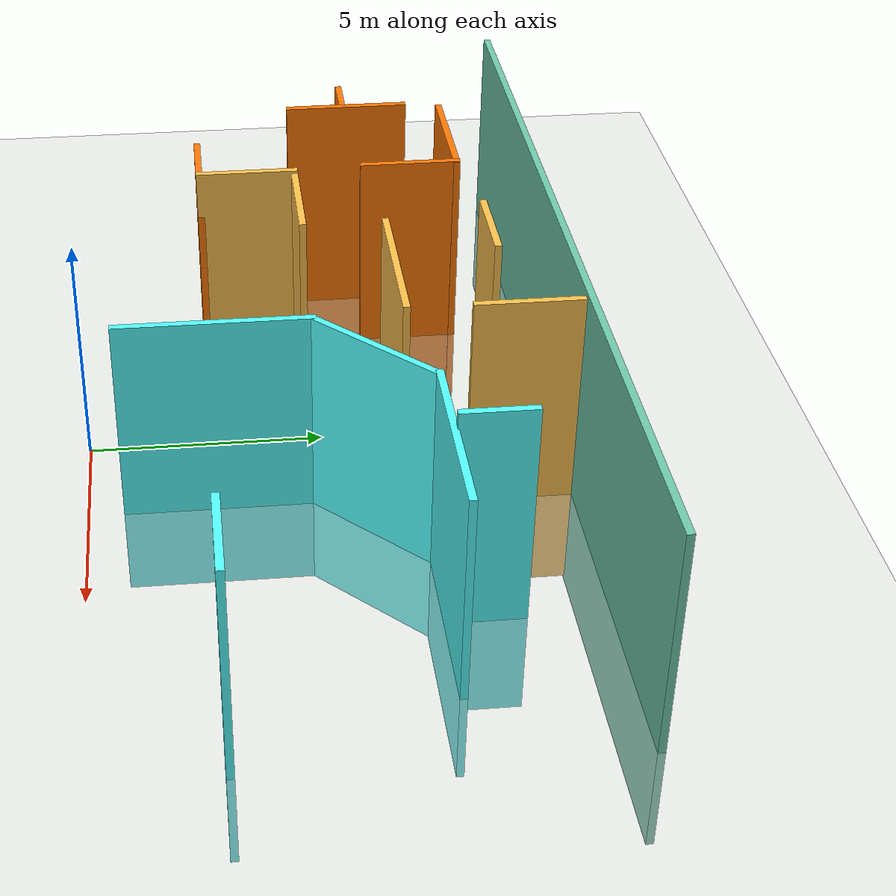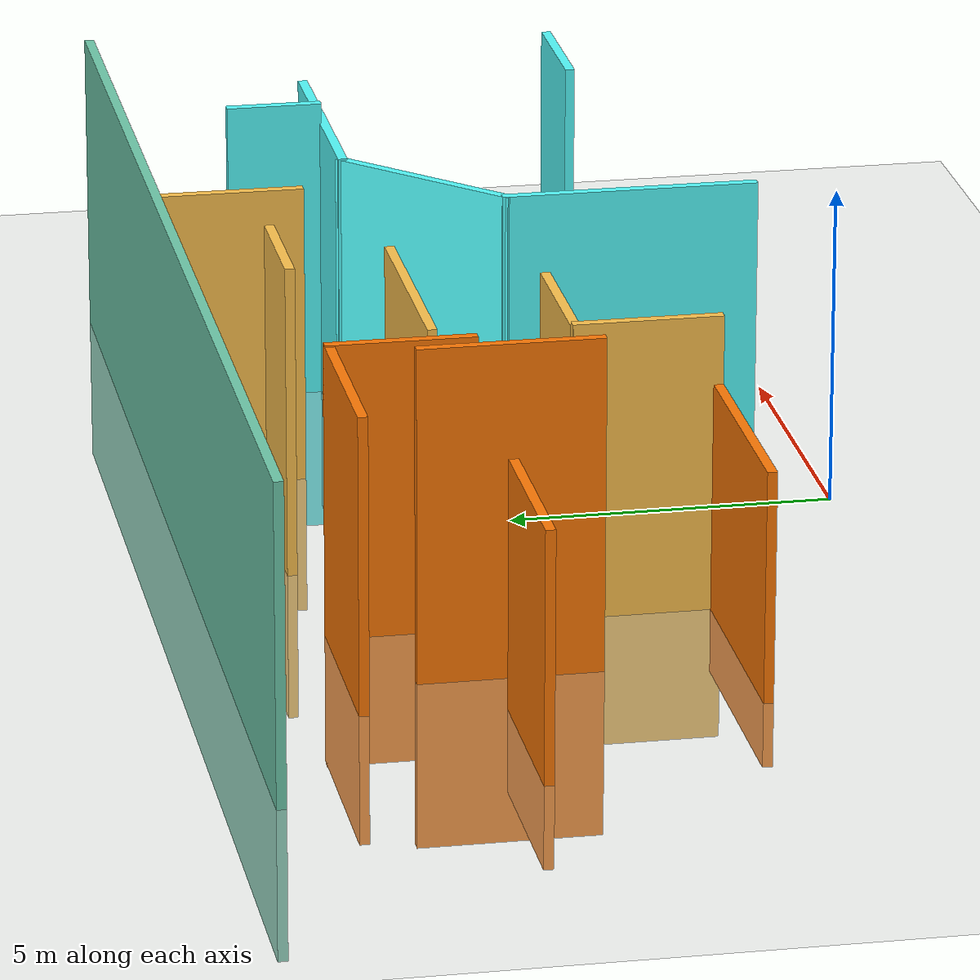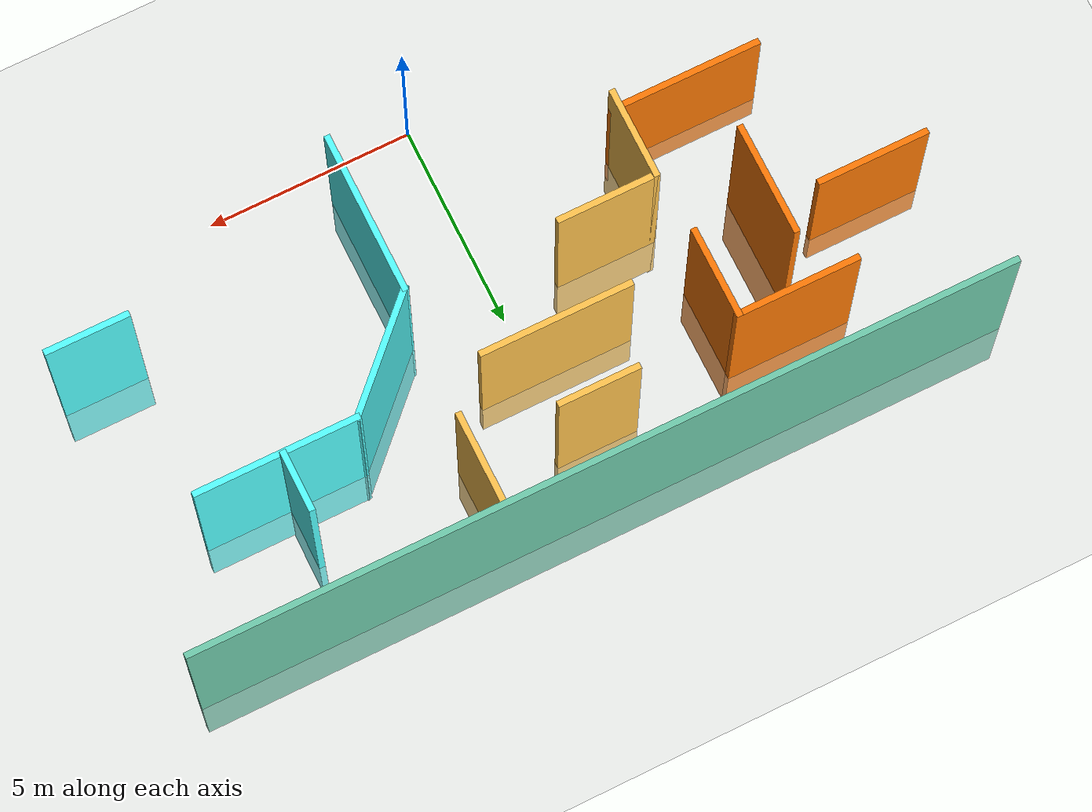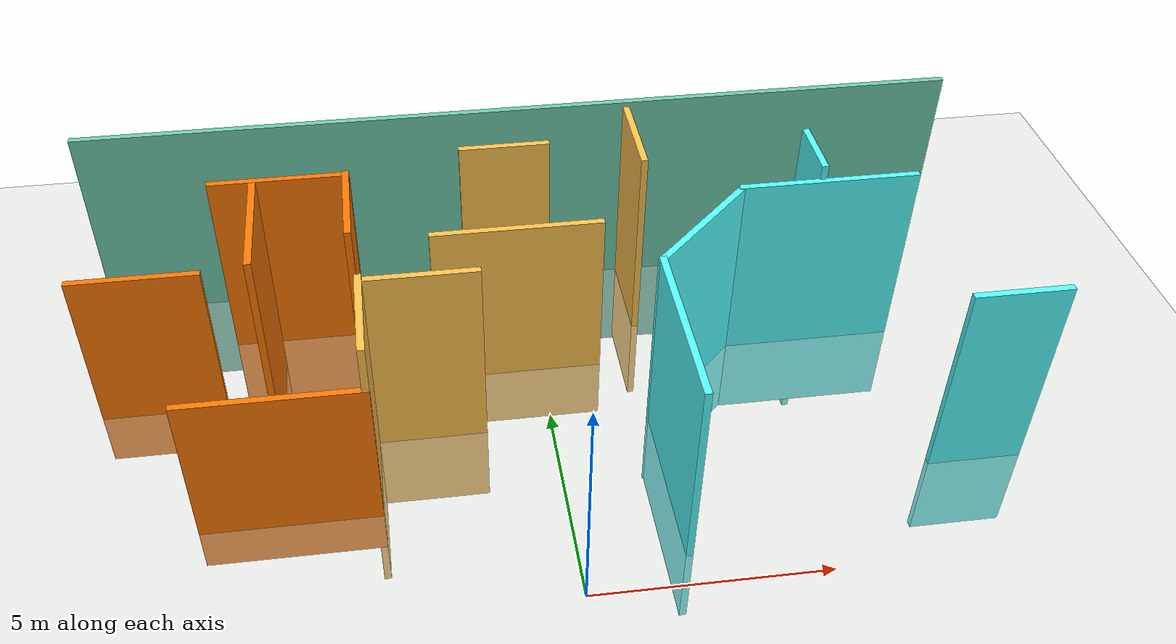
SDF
<sdf version="1.6">
 <world name="default">
  <model name="ground_plane">
   <static>1</static>
   <link name="link">
    <collision name="collision">
     <geometry><plane><normal>0 0 1</normal><size>100 100</size></plane></geometry>
     <surface><friction><ode><mu>100</mu><mu2>50</mu2></ode></friction></surface>
    </collision>
    <visual name="visual">
     <cast_shadows>0</cast_shadows>
     <geometry><plane><normal>0 0 1</normal><size>100 100</size></plane></geometry>
     <material>
      <script><uri>file://media/materials/scripts/gazebo.material</uri><name>Gazebo/Grey</name></script>
     </material>
    </visual>
   </link>
  </model>
  <model name="Maze_House">
   <link name="Wall_11">
    <pose>-5.47185 8.41758 0 0 -0 0</pose>
    <inertial>
     <inertia><ixx>0</ixx><ixy>0</ixy><ixz>0</ixz><iyy>0</iyy><iyz>0</iyz><izz>0</izz></inertia>
     <mass>0</mass>
    </inertial>
    <visual name="Wall_11_Visual">
     <pose>0 0 1.25 0 -0 0</pose>
     <geometry><box><size>3.05 0.15 6.5468</size></box></geometry>
     <material>
      <script><uri>file://media/materials/scripts/gazebo.material</uri><name>Gazebo/Grey</name></script>
      <ambient>0.996078 0.47451 0.0196078 1</ambient>
      <shader type="pixel"/>
     </material>
    </visual>
    <collision name="Wall_11_Collision">
     <pose>0 0 1.25 0 -0 0</pose>
     <geometry><box><size>3.05 0.15 6.5468</size></box></geometry>
     <surface>
      <friction>
       <ode><mu>1</mu><mu2>1</mu2><fdir1>0 0 0</fdir1><slip1>0</slip1><slip2>0</slip2></ode>
       <torsional>
        <coefficient>1</coefficient>
        <patch_radius>0</patch_radius>
        <surface_radius>0</surface_radius>
        <use_patch_radius>1</use_patch_radius>
        <ode><slip>0</slip></ode>
       </torsional>
      </friction>
      <bounce><restitution_coefficient>0</restitution_coefficient><threshold>1e+06</threshold></bounce>
      <contact>
       <collide_without_contact>0</collide_without_contact>
       <collide_without_contact_bitmask>1</collide_without_contact_bitmask>
       <collide_bitmask>1</collide_bitmask>
       <ode>
        <soft_cfm>0</soft_cfm>
        <soft_erp>0.2</soft_erp>
        <kp>1e+13</kp>
        <kd>1</kd>
        <max_vel>0.01</max_vel>
        <min_depth>0</min_depth>
       </ode>
       <bullet>
        <split_impulse>1</split_impulse>
        <split_impulse_penetration_threshold>-0.01</split_impulse_penetration_threshold>
        <soft_cfm>0</soft_cfm>
        <soft_erp>0.2</soft_erp>
        <kp>1e+13</kp>
        <kd>1</kd>
       </bullet>
      </contact>
     </surface>
    </collision>
   </link>
   <link name="Wall_12">
    <pose>-4.03185 7.36758 0 0 0 -1.5708</pose>
    <inertial>
     <inertia><ixx>0</ixx><ixy>0</ixy><ixz>0</ixz><iyy>0</iyy><iyz>0</iyz><izz>0</izz></inertia>
     <mass>0</mass>
    </inertial>
    <visual name="Wall_12_Visual">
     <pose>0 0 1.25 0 -0 0</pose>
     <geometry><box><size>2.25 0.15 6.58839</size></box></geometry>
     <material>
      <script><uri>file://media/materials/scripts/gazebo.material</uri><name>Gazebo/Grey</name></script>
      <ambient>0.996078 0.47451 0.0196078 1</ambient>
      <shader type="pixel"/>
     </material>
    </visual>
    <collision name="Wall_12_Collision">
     <pose>0 0 1.25 0 -0 0</pose>
     <geometry><box><size>2.25 0.15 6.58839</size></box></geometry>
     <surface>
      <friction>
       <ode><mu>1</mu><mu2>1</mu2><fdir1>0 0 0</fdir1><slip1>0</slip1><slip2>0</slip2></ode>
       <torsional>
        <coefficient>1</coefficient>
        <patch_radius>0</patch_radius>
        <surface_radius>0</surface_radius>
        <use_patch_radius>1</use_patch_radius>
        <ode><slip>0</slip></ode>
       </torsional>
      </friction>
      <bounce><restitution_coefficient>0</restitution_coefficient><threshold>1e+06</threshold></bounce>
      <contact>
       <collide_without_contact>0</collide_without_contact>
       <collide_without_contact_bitmask>1</collide_without_contact_bitmask>
       <collide_bitmask>1</collide_bitmask>
       <ode>
        <soft_cfm>0</soft_cfm>
        <soft_erp>0.2</soft_erp>
        <kp>1e+13</kp>
        <kd>1</kd>
        <max_vel>0.01</max_vel>
        <min_depth>0</min_depth>
       </ode>
       <bullet>
        <split_impulse>1</split_impulse>
        <split_impulse_penetration_threshold>-0.01</split_impulse_penetration_threshold>
        <soft_cfm>0</soft_cfm>
        <soft_erp>0.2</soft_erp>
        <kp>1e+13</kp>
        <kd>1</kd>
       </bullet>
      </contact>
     </surface>
    </collision>
   </link>
   <link name="Wall_14">
    <pose>-5.91104 6.10678 0 0 0 -1.5708</pose>
    <inertial>
     <inertia><ixx>0</ixx><ixy>0</ixy><ixz>0</ixz><iyy>0</iyy><iyz>0</iyz><izz>0</izz></inertia>
     <mass>0</mass>
    </inertial>
    <visual name="Wall_14_Visual">
     <pose>0 0 1.25 0 -0 0</pose>
     <geometry><box><size>2.75 0.15 7.70569</size></box></geometry>
     <material>
      <script><uri>file://media/materials/scripts/gazebo.material</uri><name>Gazebo/Grey</name></script>
      <ambient>0.996078 0.47451 0.0196078 1</ambient>
      <shader type="pixel"/>
     </material>
    </visual>
    <collision name="Wall_14_Collision">
     <pose>0 0 1.25 0 -0 0</pose>
     <geometry><box><size>2.75 0.15 7.70569</size></box></geometry>
     <surface>
      <friction>
       <ode><mu>1</mu><mu2>1</mu2><fdir1>0 0 0</fdir1><slip1>0</slip1><slip2>0</slip2></ode>
       <torsional>
        <coefficient>1</coefficient>
        <patch_radius>0</patch_radius>
        <surface_radius>0</surface_radius>
        <use_patch_radius>1</use_patch_radius>
        <ode><slip>0</slip></ode>
       </torsional>
      </friction>
      <bounce><restitution_coefficient>0</restitution_coefficient><threshold>1e+06</threshold></bounce>
      <contact>
       <collide_without_contact>0</collide_without_contact>
       <collide_without_contact_bitmask>1</collide_without_contact_bitmask>
       <collide_bitmask>1</collide_bitmask>
       <ode>
        <soft_cfm>0</soft_cfm>
        <soft_erp>0.2</soft_erp>
        <kp>1e+13</kp>
        <kd>1</kd>
        <max_vel>0.01</max_vel>
        <min_depth>0</min_depth>
       </ode>
       <bullet>
        <split_impulse>1</split_impulse>
        <split_impulse_penetration_threshold>-0.01</split_impulse_penetration_threshold>
        <soft_cfm>0</soft_cfm>
        <soft_erp>0.2</soft_erp>
        <kp>1e+13</kp>
        <kd>1</kd>
       </bullet>
      </contact>
     </surface>
    </collision>
   </link>
   <link name="Wall_16">
    <pose>-8.48785 6.28957 0 0 -0 3.14159</pose>
    <inertial>
     <inertia><ixx>0</ixx><ixy>0</ixy><ixz>0</ixz><iyy>0</iyy><iyz>0</iyz><izz>0</izz></inertia>
     <mass>0</mass>
    </inertial>
    <visual name="Wall_16_Visual">
     <pose>0 0 1.25 0 -0 0</pose>
     <geometry><box><size>2.75 0.15 5.10122</size></box></geometry>
     <material>
      <script><uri>file://media/materials/scripts/gazebo.material</uri><name>Gazebo/Grey</name></script>
      <ambient>0.996078 0.47451 0.0196078 1</ambient>
      <shader type="pixel"/>
     </material>
    </visual>
    <collision name="Wall_16_Collision">
     <pose>0 0 1.25 0 -0 0</pose>
     <geometry><box><size>2.75 0.15 5.10122</size></box></geometry>
     <surface>
      <friction>
       <ode><mu>1</mu><mu2>1</mu2><fdir1>0 0 0</fdir1><slip1>0</slip1><slip2>0</slip2></ode>
       <torsional>
        <coefficient>1</coefficient>
        <patch_radius>0</patch_radius>
        <surface_radius>0</surface_radius>
        <use_patch_radius>1</use_patch_radius>
        <ode><slip>0</slip></ode>
       </torsional>
      </friction>
      <bounce><restitution_coefficient>0</restitution_coefficient><threshold>1e+06</threshold></bounce>
      <contact>
       <collide_without_contact>0</collide_without_contact>
       <collide_without_contact_bitmask>1</collide_without_contact_bitmask>
       <collide_bitmask>1</collide_bitmask>
       <ode>
        <soft_cfm>0</soft_cfm>
        <soft_erp>0.2</soft_erp>
        <kp>1e+13</kp>
        <kd>1</kd>
        <max_vel>0.01</max_vel>
        <min_depth>0</min_depth>
       </ode>
       <bullet>
        <split_impulse>1</split_impulse>
        <split_impulse_penetration_threshold>-0.01</split_impulse_penetration_threshold>
        <soft_cfm>0</soft_cfm>
        <soft_erp>0.2</soft_erp>
        <kp>1e+13</kp>
        <kd>1</kd>
       </bullet>
      </contact>
     </surface>
    </collision>
   </link>
   <link name="Wall_20">
    <pose>-2.69303 4.75396 0 0 -0 0</pose>
    <inertial>
     <inertia><ixx>0</ixx><ixy>0</ixy><ixz>0</ixz><iyy>0</iyy><iyz>0</iyz><izz>0</izz></inertia>
     <mass>0</mass>
    </inertial>
    <visual name="Wall_20_Visual">
     <pose>0 0 1.25 0 -0 0</pose>
     <geometry><box><size>2.5 0.15 6.50809</size></box></geometry>
     <material>
      <script><uri>file://media/materials/scripts/gazebo.material</uri><name>Gazebo/Grey</name></script>
      <ambient>1 0.764706 0.305882 1</ambient>
      <shader type="pixel"/>
     </material>
    </visual>
    <collision name="Wall_20_Collision">
     <pose>0 0 1.25 0 -0 0</pose>
     <geometry><box><size>2.5 0.15 6.50809</size></box></geometry>
     <surface>
      <friction>
       <ode><mu>1</mu><mu2>1</mu2><fdir1>0 0 0</fdir1><slip1>0</slip1><slip2>0</slip2></ode>
       <torsional>
        <coefficient>1</coefficient>
        <patch_radius>0</patch_radius>
        <surface_radius>0</surface_radius>
        <use_patch_radius>1</use_patch_radius>
        <ode><slip>0</slip></ode>
       </torsional>
      </friction>
      <bounce><restitution_coefficient>0</restitution_coefficient><threshold>1e+06</threshold></bounce>
      <contact>
       <collide_without_contact>0</collide_without_contact>
       <collide_without_contact_bitmask>1</collide_without_contact_bitmask>
       <collide_bitmask>1</collide_bitmask>
       <ode>
        <soft_cfm>0</soft_cfm>
        <soft_erp>0.2</soft_erp>
        <kp>1e+13</kp>
        <kd>1</kd>
        <max_vel>0.01</max_vel>
        <min_depth>0</min_depth>
       </ode>
       <bullet>
        <split_impulse>1</split_impulse>
        <split_impulse_penetration_threshold>-0.01</split_impulse_penetration_threshold>
        <soft_cfm>0</soft_cfm>
        <soft_erp>0.2</soft_erp>
        <kp>1e+13</kp>
        <kd>1</kd>
       </bullet>
      </contact>
     </surface>
    </collision>
   </link>
   <link name="Wall_22">
    <pose>-0.505302 6.6178 0 0 -0 0</pose>
    <inertial>
     <inertia><ixx>0</ixx><ixy>0</ixy><ixz>0</ixz><iyy>0</iyy><iyz>0</iyz><izz>0</izz></inertia>
     <mass>0</mass>
    </inertial>
    <visual name="Wall_22_Visual">
     <pose>0 0 1.25 0 -0 0</pose>
     <geometry><box><size>3.75 0.15 5.61335</size></box></geometry>
     <material>
      <script><uri>file://media/materials/scripts/gazebo.material</uri><name>Gazebo/Grey</name></script>
      <ambient>1 0.764706 0.305882 1</ambient>
      <shader type="pixel"/>
     </material>
    </visual>
    <collision name="Wall_22_Collision">
     <pose>0 0 1.25 0 -0 0</pose>
     <geometry><box><size>3.75 0.15 5.61335</size></box></geometry>
     <surface>
      <friction>
       <ode><mu>1</mu><mu2>1</mu2><fdir1>0 0 0</fdir1><slip1>0</slip1><slip2>0</slip2></ode>
       <torsional>
        <coefficient>1</coefficient>
        <patch_radius>0</patch_radius>
        <surface_radius>0</surface_radius>
        <use_patch_radius>1</use_patch_radius>
        <ode><slip>0</slip></ode>
       </torsional>
      </friction>
      <bounce><restitution_coefficient>0</restitution_coefficient><threshold>1e+06</threshold></bounce>
      <contact>
       <collide_without_contact>0</collide_without_contact>
       <collide_without_contact_bitmask>1</collide_without_contact_bitmask>
       <collide_bitmask>1</collide_bitmask>
       <ode>
        <soft_cfm>0</soft_cfm>
        <soft_erp>0.2</soft_erp>
        <kp>1e+13</kp>
        <kd>1</kd>
        <max_vel>0.01</max_vel>
        <min_depth>0</min_depth>
       </ode>
       <bullet>
        <split_impulse>1</split_impulse>
        <split_impulse_penetration_threshold>-0.01</split_impulse_penetration_threshold>
        <soft_cfm>0</soft_cfm>
        <soft_erp>0.2</soft_erp>
        <kp>1e+13</kp>
        <kd>1</kd>
       </bullet>
      </contact>
     </surface>
    </collision>
   </link>
   <link name="Wall_24">
    <pose>2.20732 2.72875 0 0 0 -1.5708</pose>
    <inertial>
     <inertia><ixx>0</ixx><ixy>0</ixy><ixz>0</ixz><iyy>0</iyy><iyz>0</iyz><izz>0</izz></inertia>
     <mass>0</mass>
    </inertial>
    <visual name="Wall_24_Visual">
     <pose>0 0 1.25 0 -0 0</pose>
     <geometry><box><size>4 0.15 6.43669</size></box></geometry>
     <material>
      <script><uri>file://media/materials/scripts/gazebo.material</uri><name>Gazebo/Grey</name></script>
      <ambient>0.333333 1 1 1</ambient>
      <shader type="pixel"/>
     </material>
    </visual>
    <collision name="Wall_24_Collision">
     <pose>0 0 1.25 0 -0 0</pose>
     <geometry><box><size>4 0.15 6.43669</size></box></geometry>
     <surface>
      <friction>
       <ode><mu>1</mu><mu2>1</mu2><fdir1>0 0 0</fdir1><slip1>0</slip1><slip2>0</slip2></ode>
       <torsional>
        <coefficient>1</coefficient>
        <patch_radius>0</patch_radius>
        <surface_radius>0</surface_radius>
        <use_patch_radius>1</use_patch_radius>
        <ode><slip>0</slip></ode>
       </torsional>
      </friction>
      <bounce><restitution_coefficient>0</restitution_coefficient><threshold>1e+06</threshold></bounce>
      <contact>
       <collide_without_contact>0</collide_without_contact>
       <collide_without_contact_bitmask>1</collide_without_contact_bitmask>
       <collide_bitmask>1</collide_bitmask>
       <ode>
        <soft_cfm>0</soft_cfm>
        <soft_erp>0.2</soft_erp>
        <kp>1e+13</kp>
        <kd>1</kd>
        <max_vel>0.01</max_vel>
        <min_depth>0</min_depth>
       </ode>
       <bullet>
        <split_impulse>1</split_impulse>
        <split_impulse_penetration_threshold>-0.01</split_impulse_penetration_threshold>
        <soft_cfm>0</soft_cfm>
        <soft_erp>0.2</soft_erp>
        <kp>1e+13</kp>
        <kd>1</kd>
       </bullet>
      </contact>
     </surface>
    </collision>
   </link>
   <link name="Wall_27">
    <pose>-0.54846 8.59601 0 0 -0 0</pose>
    <inertial>
     <inertia><ixx>0</ixx><ixy>0</ixy><ixz>0</ixz><iyy>0</iyy><iyz>0</iyz><izz>0</izz></inertia>
     <mass>0</mass>
    </inertial>
    <visual name="Wall_27_Visual">
     <pose>0 0 1.25 0 -0 0</pose>
     <geometry><box><size>2 0.15 7.16433</size></box></geometry>
     <material>
      <script><uri>file://media/materials/scripts/gazebo.material</uri><name>Gazebo/Grey</name></script>
      <ambient>1 0.764706 0.305882 1</ambient>
      <shader type="pixel"/>
     </material>
    </visual>
    <collision name="Wall_27_Collision">
     <pose>0 0 1.25 0 -0 0</pose>
     <geometry><box><size>2 0.15 7.16433</size></box></geometry>
     <surface>
      <friction>
       <ode><mu>1</mu><mu2>1</mu2><fdir1>0 0 0</fdir1><slip1>0</slip1><slip2>0</slip2></ode>
       <torsional>
        <coefficient>1</coefficient>
        <patch_radius>0</patch_radius>
        <surface_radius>0</surface_radius>
        <use_patch_radius>1</use_patch_radius>
        <ode><slip>0</slip></ode>
       </torsional>
      </friction>
      <bounce><restitution_coefficient>0</restitution_coefficient><threshold>1e+06</threshold></bounce>
      <contact>
       <collide_without_contact>0</collide_without_contact>
       <collide_without_contact_bitmask>1</collide_without_contact_bitmask>
       <collide_bitmask>1</collide_bitmask>
       <ode>
        <soft_cfm>0</soft_cfm>
        <soft_erp>0.2</soft_erp>
        <kp>1e+13</kp>
        <kd>1</kd>
        <max_vel>0.01</max_vel>
        <min_depth>0</min_depth>
       </ode>
       <bullet>
        <split_impulse>1</split_impulse>
        <split_impulse_penetration_threshold>-0.01</split_impulse_penetration_threshold>
        <soft_cfm>0</soft_cfm>
        <soft_erp>0.2</soft_erp>
        <kp>1e+13</kp>
        <kd>1</kd>
       </bullet>
      </contact>
     </surface>
    </collision>
   </link>
   <link name="Wall_29">
    <pose>2.42857 8.89362 0 0 0 -1.5708</pose>
    <inertial>
     <inertia><ixx>0</ixx><ixy>0</ixy><ixz>0</ixz><iyy>0</iyy><iyz>0</iyz><izz>0</izz></inertia>
     <mass>0</mass>
    </inertial>
    <visual name="Wall_29_Visual">
     <pose>0 0 1.25 0 -0 0</pose>
     <geometry><box><size>2.25 0.15 6.9312</size></box></geometry>
     <material>
      <script><uri>file://media/materials/scripts/gazebo.material</uri><name>Gazebo/Grey</name></script>
      <ambient>1 0.764706 0.305882 1</ambient>
      <shader type="pixel"/>
     </material>
    </visual>
    <collision name="Wall_29_Collision">
     <pose>0 0 1.25 0 -0 0</pose>
     <geometry><box><size>2.25 0.15 6.9312</size></box></geometry>
     <surface>
      <friction>
       <ode><mu>1</mu><mu2>1</mu2><fdir1>0 0 0</fdir1><slip1>0</slip1><slip2>0</slip2></ode>
       <torsional>
        <coefficient>1</coefficient>
        <patch_radius>0</patch_radius>
        <surface_radius>0</surface_radius>
        <use_patch_radius>1</use_patch_radius>
        <ode><slip>0</slip></ode>
       </torsional>
      </friction>
      <bounce><restitution_coefficient>0</restitution_coefficient><threshold>1e+06</threshold></bounce>
      <contact>
       <collide_without_contact>0</collide_without_contact>
       <collide_without_contact_bitmask>1</collide_without_contact_bitmask>
       <collide_bitmask>1</collide_bitmask>
       <ode>
        <soft_cfm>0</soft_cfm>
        <soft_erp>0.2</soft_erp>
        <kp>1e+13</kp>
        <kd>1</kd>
        <max_vel>0.01</max_vel>
        <min_depth>0</min_depth>
       </ode>
       <bullet>
        <split_impulse>1</split_impulse>
        <split_impulse_penetration_threshold>-0.01</split_impulse_penetration_threshold>
        <soft_cfm>0</soft_cfm>
        <soft_erp>0.2</soft_erp>
        <kp>1e+13</kp>
        <kd>1</kd>
       </bullet>
      </contact>
     </surface>
    </collision>
   </link>
   <link name="Wall_31">
    <pose>3.30334 5.74977 0 0 -0 0.785398</pose>
    <inertial>
     <inertia><ixx>0</ixx><ixy>0</ixy><ixz>0</ixz><iyy>0</iyy><iyz>0</iyz><izz>0</izz></inertia>
     <mass>0</mass>
    </inertial>
    <visual name="Wall_31_Visual">
     <pose>0 0 1.25 0 -0 0</pose>
     <geometry><box><size>3.25 0.15 6.42965</size></box></geometry>
     <material>
      <script><uri>file://media/materials/scripts/gazebo.material</uri><name>Gazebo/Grey</name></script>
      <ambient>0.333333 1 1 1</ambient>
      <shader type="pixel"/>
     </material>
    </visual>
    <collision name="Wall_31_Collision">
     <pose>0 0 1.25 0 -0 0</pose>
     <geometry><box><size>3.25 0.15 6.42965</size></box></geometry>
     <surface>
      <friction>
       <ode><mu>1</mu><mu2>1</mu2><fdir1>0 0 0</fdir1><slip1>0</slip1><slip2>0</slip2></ode>
       <torsional>
        <coefficient>1</coefficient>
        <patch_radius>0</patch_radius>
        <surface_radius>0</surface_radius>
        <use_patch_radius>1</use_patch_radius>
        <ode><slip>0</slip></ode>
       </torsional>
      </friction>
      <bounce><restitution_coefficient>0</restitution_coefficient><threshold>1e+06</threshold></bounce>
      <contact>
       <collide_without_contact>0</collide_without_contact>
       <collide_without_contact_bitmask>1</collide_without_contact_bitmask>
       <collide_bitmask>1</collide_bitmask>
       <ode>
        <soft_cfm>0</soft_cfm>
        <soft_erp>0.2</soft_erp>
        <kp>1e+13</kp>
        <kd>1</kd>
        <max_vel>0.01</max_vel>
        <min_depth>0</min_depth>
       </ode>
       <bullet>
        <split_impulse>1</split_impulse>
        <split_impulse_penetration_threshold>-0.01</split_impulse_penetration_threshold>
        <soft_cfm>0</soft_cfm>
        <soft_erp>0.2</soft_erp>
        <kp>1e+13</kp>
        <kd>1</kd>
       </bullet>
      </contact>
     </surface>
    </collision>
   </link>
   <link name="Wall_32">
    <pose>6.32435 6.84578 0 0 -0 0</pose>
    <inertial>
     <inertia><ixx>0</ixx><ixy>0</ixy><ixz>0</ixz><iyy>0</iyy><iyz>0</iyz><izz>0</izz></inertia>
     <mass>0</mass>
    </inertial>
    <visual name="Wall_32_Visual">
     <pose>0 0 1.25 0 -0 0</pose>
     <geometry><box><size>4 0.15 6.47597</size></box></geometry>
     <material>
      <script><uri>file://media/materials/scripts/gazebo.material</uri><name>Gazebo/Grey</name></script>
      <ambient>0.333333 1 1 1</ambient>
      <shader type="pixel"/>
     </material>
    </visual>
    <collision name="Wall_32_Collision">
     <pose>0 0 1.25 0 -0 0</pose>
     <geometry><box><size>4 0.15 6.47597</size></box></geometry>
     <surface>
      <friction>
       <ode><mu>1</mu><mu2>1</mu2><fdir1>0 0 0</fdir1><slip1>0</slip1><slip2>0</slip2></ode>
       <torsional>
        <coefficient>1</coefficient>
        <patch_radius>0</patch_radius>
        <surface_radius>0</surface_radius>
        <use_patch_radius>1</use_patch_radius>
        <ode><slip>0</slip></ode>
       </torsional>
      </friction>
      <bounce><restitution_coefficient>0</restitution_coefficient><threshold>1e+06</threshold></bounce>
      <contact>
       <collide_without_contact>0</collide_without_contact>
       <collide_without_contact_bitmask>1</collide_without_contact_bitmask>
       <collide_bitmask>1</collide_bitmask>
       <ode>
        <soft_cfm>0</soft_cfm>
        <soft_erp>0.2</soft_erp>
        <kp>1e+13</kp>
        <kd>1</kd>
        <max_vel>0.01</max_vel>
        <min_depth>0</min_depth>
       </ode>
       <bullet>
        <split_impulse>1</split_impulse>
        <split_impulse_penetration_threshold>-0.01</split_impulse_penetration_threshold>
        <soft_cfm>0</soft_cfm>
        <soft_erp>0.2</soft_erp>
        <kp>1e+13</kp>
        <kd>1</kd>
       </bullet>
      </contact>
     </surface>
    </collision>
   </link>
   <link name="Wall_36">
    <pose>6.18981 7.64181 0 0 -0 1.5708</pose>
    <inertial>
     <inertia><ixx>0</ixx><ixy>0</ixy><ixz>0</ixz><iyy>0</iyy><iyz>0</iyz><izz>0</izz></inertia>
     <mass>0</mass>
    </inertial>
    <visual name="Wall_36_Visual">
     <pose>0 0 1.25 0 -0 0</pose>
     <geometry><box><size>1.5 0.15 7.12737</size></box></geometry>
     <material>
      <script><uri>file://media/materials/scripts/gazebo.material</uri><name>Gazebo/Grey</name></script>
      <ambient>0.333333 1 1 1</ambient>
      <shader type="pixel"/>
     </material>
    </visual>
    <collision name="Wall_36_Collision">
     <pose>0 0 1.25 0 -0 0</pose>
     <geometry><box><size>1.5 0.15 7.12737</size></box></geometry>
     <surface>
      <friction>
       <ode><mu>1</mu><mu2>1</mu2><fdir1>0 0 0</fdir1><slip1>0</slip1><slip2>0</slip2></ode>
       <torsional>
        <coefficient>1</coefficient>
        <patch_radius>0</patch_radius>
        <surface_radius>0</surface_radius>
        <use_patch_radius>1</use_patch_radius>
        <ode><slip>0</slip></ode>
       </torsional>
      </friction>
      <bounce><restitution_coefficient>0</restitution_coefficient><threshold>1e+06</threshold></bounce>
      <contact>
       <collide_without_contact>0</collide_without_contact>
       <collide_without_contact_bitmask>1</collide_without_contact_bitmask>
       <collide_bitmask>1</collide_bitmask>
       <ode>
        <soft_cfm>0</soft_cfm>
        <soft_erp>0.2</soft_erp>
        <kp>1e+13</kp>
        <kd>1</kd>
        <max_vel>0.01</max_vel>
        <min_depth>0</min_depth>
       </ode>
       <bullet>
        <split_impulse>1</split_impulse>
        <split_impulse_penetration_threshold>-0.01</split_impulse_penetration_threshold>
        <soft_cfm>0</soft_cfm>
        <soft_erp>0.2</soft_erp>
        <kp>1e+13</kp>
        <kd>1</kd>
       </bullet>
      </contact>
     </surface>
    </collision>
   </link>
   <link name="Wall_39">
    <pose>-3.86803 3.70396 0 0 0 -1.5708</pose>
    <inertial>
     <inertia><ixx>0</ixx><ixy>0</ixy><ixz>0</ixz><iyy>0</iyy><iyz>0</iyz><izz>0</izz></inertia>
     <mass>0</mass>
    </inertial>
    <visual name="Wall_39_Visual">
     <pose>0 0 1.25 0 -0 0</pose>
     <geometry><box><size>2.25 0.15 6.64683</size></box></geometry>
     <material>
      <script><uri>file://media/materials/scripts/gazebo.material</uri><name>Gazebo/Grey</name></script>
      <ambient>1 0.764706 0.305882 1</ambient>
      <shader type="pixel"/>
     </material>
    </visual>
    <collision name="Wall_39_Collision">
     <pose>0 0 1.25 0 -0 0</pose>
     <geometry><box><size>2.25 0.15 6.64683</size></box></geometry>
     <surface>
      <friction>
       <ode><mu>1</mu><mu2>1</mu2><fdir1>0 0 0</fdir1><slip1>0</slip1><slip2>0</slip2></ode>
       <torsional>
        <coefficient>1</coefficient>
        <patch_radius>0</patch_radius>
        <surface_radius>0</surface_radius>
        <use_patch_radius>1</use_patch_radius>
        <ode><slip>0</slip></ode>
       </torsional>
      </friction>
      <bounce><restitution_coefficient>0</restitution_coefficient><threshold>1e+06</threshold></bounce>
      <contact>
       <collide_without_contact>0</collide_without_contact>
       <collide_without_contact_bitmask>1</collide_without_contact_bitmask>
       <collide_bitmask>1</collide_bitmask>
       <ode>
        <soft_cfm>0</soft_cfm>
        <soft_erp>0.2</soft_erp>
        <kp>1e+13</kp>
        <kd>1</kd>
        <max_vel>0.01</max_vel>
        <min_depth>0</min_depth>
       </ode>
       <bullet>
        <split_impulse>1</split_impulse>
        <split_impulse_penetration_threshold>-0.01</split_impulse_penetration_threshold>
        <soft_cfm>0</soft_cfm>
        <soft_erp>0.2</soft_erp>
        <kp>1e+13</kp>
        <kd>1</kd>
       </bullet>
      </contact>
     </surface>
    </collision>
   </link>
   <link name="Wall_40">
    <pose>-5.66803 2.65396 0 0 -0 3.14159</pose>
    <inertial>
     <inertia><ixx>0</ixx><ixy>0</ixy><ixz>0</ixz><iyy>0</iyy><iyz>0</iyz><izz>0</izz></inertia>
     <mass>0</mass>
    </inertial>
    <visual name="Wall_40_Visual">
     <pose>0 0 1.25 0 -0 0</pose>
     <geometry><box><size>3.75 0.15 4.53063</size></box></geometry>
     <material>
      <script><uri>file://media/materials/scripts/gazebo.material</uri><name>Gazebo/Grey</name></script>
      <ambient>0.996078 0.47451 0.0196078 1</ambient>
      <shader type="pixel"/>
     </material>
    </visual>
    <collision name="Wall_40_Collision">
     <pose>0 0 1.25 0 -0 0</pose>
     <geometry><box><size>3.75 0.15 4.53063</size></box></geometry>
     <surface>
      <friction>
       <ode><mu>1</mu><mu2>1</mu2><fdir1>0 0 0</fdir1><slip1>0</slip1><slip2>0</slip2></ode>
       <torsional>
        <coefficient>1</coefficient>
        <patch_radius>0</patch_radius>
        <surface_radius>0</surface_radius>
        <use_patch_radius>1</use_patch_radius>
        <ode><slip>0</slip></ode>
       </torsional>
      </friction>
      <bounce><restitution_coefficient>0</restitution_coefficient><threshold>1e+06</threshold></bounce>
      <contact>
       <collide_without_contact>0</collide_without_contact>
       <collide_without_contact_bitmask>1</collide_without_contact_bitmask>
       <collide_bitmask>1</collide_bitmask>
       <ode>
        <soft_cfm>0</soft_cfm>
        <soft_erp>0.2</soft_erp>
        <kp>1e+13</kp>
        <kd>1</kd>
        <max_vel>0.01</max_vel>
        <min_depth>0</min_depth>
       </ode>
       <bullet>
        <split_impulse>1</split_impulse>
        <split_impulse_penetration_threshold>-0.01</split_impulse_penetration_threshold>
        <soft_cfm>0</soft_cfm>
        <soft_erp>0.2</soft_erp>
        <kp>1e+13</kp>
        <kd>1</kd>
       </bullet>
      </contact>
     </surface>
    </collision>
   </link>
   <link name="Wall_6">
    <pose>-0.015512 10.075 0 0 -0 0</pose>
    <inertial>
     <inertia><ixx>0</ixx><ixy>0</ixy><ixz>0</ixz><iyy>0</iyy><iyz>0</iyz><izz>0</izz></inertia>
     <mass>0</mass>
    </inertial>
    <visual name="Wall_6_Visual">
     <pose>0 0 1.25 0 -0 0</pose>
     <geometry><box><size>20 0.15 7.15802</size></box></geometry>
     <material>
      <script><uri>file://media/materials/scripts/gazebo.material</uri><name>Gazebo/Grey</name></script>
      <ambient>0.435 0.796 0.675 1</ambient>
      <shader type="pixel"><normal_map>__default__</normal_map></shader>
      <diffuse>0.7 0.7 0.7 1</diffuse>
      <specular>0.01 0.01 0.01 1</specular>
      <emissive>0 0 0 1</emissive>
     </material>
    </visual>
    <collision name="Wall_6_Collision">
     <pose>0 0 1.25 0 -0 0</pose>
     <geometry><box><size>20 0.15 5.15802</size></box></geometry>
     <surface>
      <friction>
       <ode><mu>1</mu><mu2>1</mu2><fdir1>0 0 0</fdir1><slip1>0</slip1><slip2>0</slip2></ode>
       <torsional>
        <coefficient>1</coefficient>
        <patch_radius>0</patch_radius>
        <surface_radius>0</surface_radius>
        <use_patch_radius>1</use_patch_radius>
        <ode><slip>0</slip></ode>
       </torsional>
      </friction>
      <bounce><restitution_coefficient>0</restitution_coefficient><threshold>1e+06</threshold></bounce>
      <contact>
       <collide_without_contact>0</collide_without_contact>
       <collide_without_contact_bitmask>1</collide_without_contact_bitmask>
       <collide_bitmask>1</collide_bitmask>
       <ode>
        <soft_cfm>0</soft_cfm>
        <soft_erp>0.2</soft_erp>
        <kp>1e+13</kp>
        <kd>1</kd>
        <max_vel>0.01</max_vel>
        <min_depth>0</min_depth>
       </ode>
       <bullet>
        <split_impulse>1</split_impulse>
        <split_impulse_penetration_threshold>-0.01</split_impulse_penetration_threshold>
        <soft_cfm>0</soft_cfm>
        <soft_erp>0.2</soft_erp>
        <kp>1e+13</kp>
        <kd>1</kd>
       </bullet>
      </contact>
     </surface>
    </collision>
   </link>
   <link name="Wall_65_clone">
    <pose>8.8412 2.57089 0 0 -0 0</pose>
    <inertial>
     <inertia><ixx>0</ixx><ixy>0</ixy><ixz>0</ixz><iyy>0</iyy><iyz>0</iyz><izz>0</izz></inertia>
     <mass>0</mass>
    </inertial>
    <visual name="Wall_65_Visual">
     <pose>0 0 1.25 0 -0 0</pose>
     <geometry><box><size>2.04462 0.15 6.68903</size></box></geometry>
     <material>
      <script><uri>file://media/materials/scripts/gazebo.material</uri><name>Gazebo/Grey</name></script>
      <ambient>0.333333 1 1 1</ambient>
      <shader type="pixel"/>
     </material>
    </visual>
    <collision name="Wall_65_Collision">
     <pose>0 0 1.25 0 -0 0</pose>
     <geometry><box><size>2.04462 0.15 6.68903</size></box></geometry>
     <surface>
      <friction>
       <ode><mu>1</mu><mu2>1</mu2><fdir1>0 0 0</fdir1><slip1>0</slip1><slip2>0</slip2></ode>
       <torsional>
        <coefficient>1</coefficient>
        <patch_radius>0</patch_radius>
        <surface_radius>0</surface_radius>
        <use_patch_radius>1</use_patch_radius>
        <ode><slip>0</slip></ode>
       </torsional>
      </friction>
      <bounce><restitution_coefficient>0</restitution_coefficient><threshold>1e+06</threshold></bounce>
      <contact>
       <collide_without_contact>0</collide_without_contact>
       <collide_without_contact_bitmask>1</collide_without_contact_bitmask>
       <collide_bitmask>1</collide_bitmask>
       <ode>
        <soft_cfm>0</soft_cfm>
        <soft_erp>0.2</soft_erp>
        <kp>1e+13</kp>
        <kd>1</kd>
        <max_vel>0.01</max_vel>
        <min_depth>0</min_depth>
       </ode>
       <bullet>
        <split_impulse>1</split_impulse>
        <split_impulse_penetration_threshold>-0.01</split_impulse_penetration_threshold>
        <soft_cfm>0</soft_cfm>
        <soft_erp>0.2</soft_erp>
        <kp>1e+13</kp>
        <kd>1</kd>
       </bullet>
      </contact>
     </surface>
    </collision>
   </link>
   <static>1</static>
  </model>
 </world>
</sdf>
